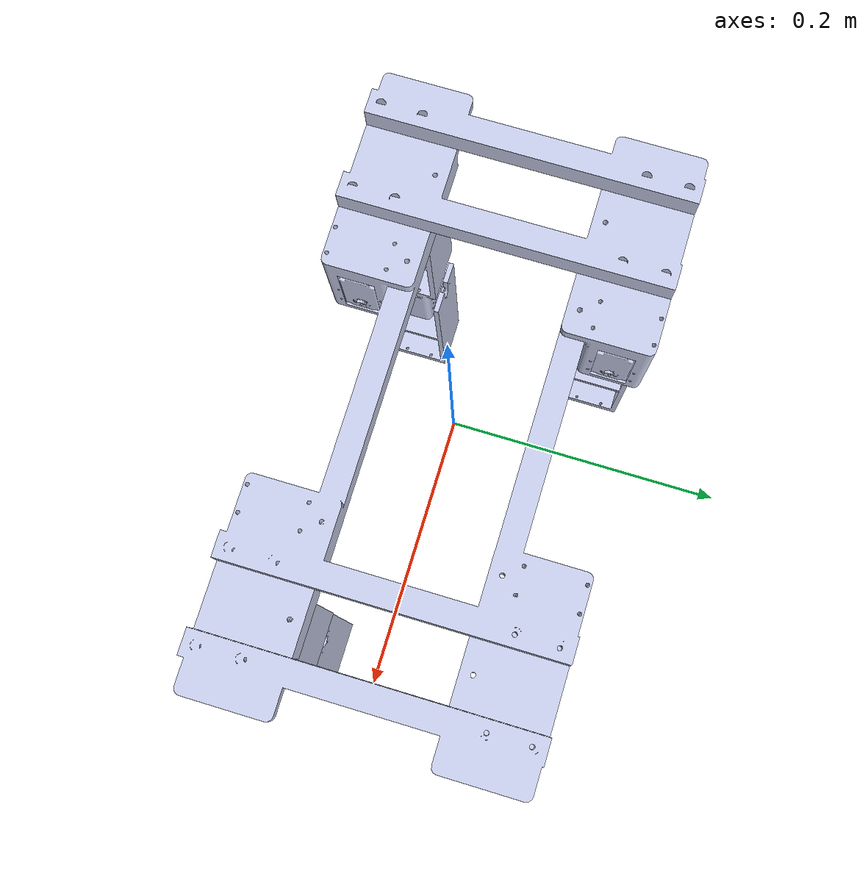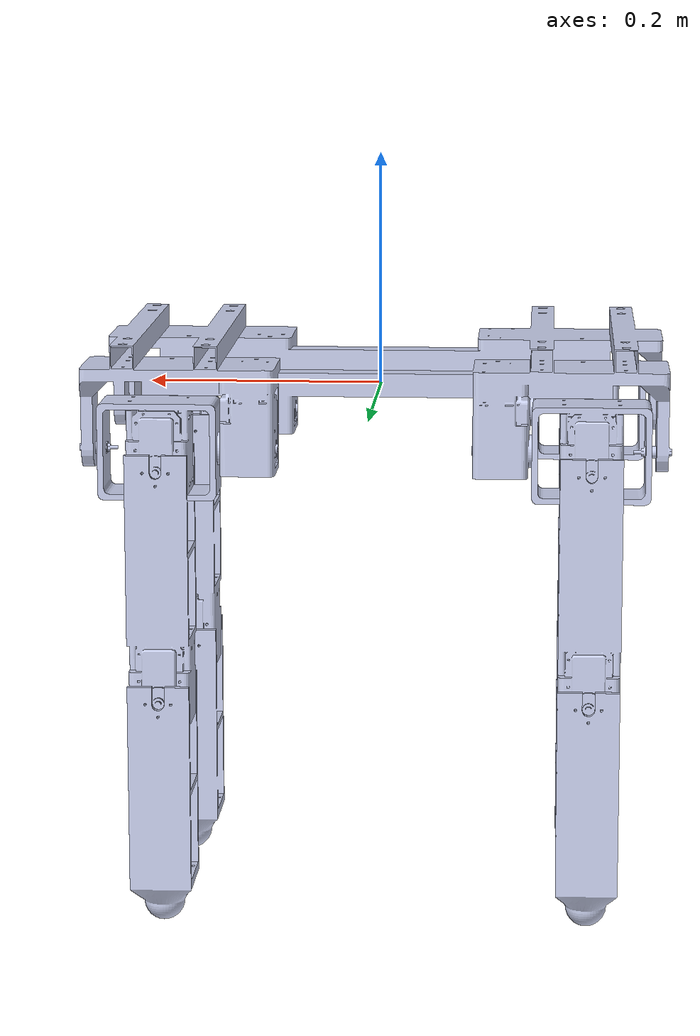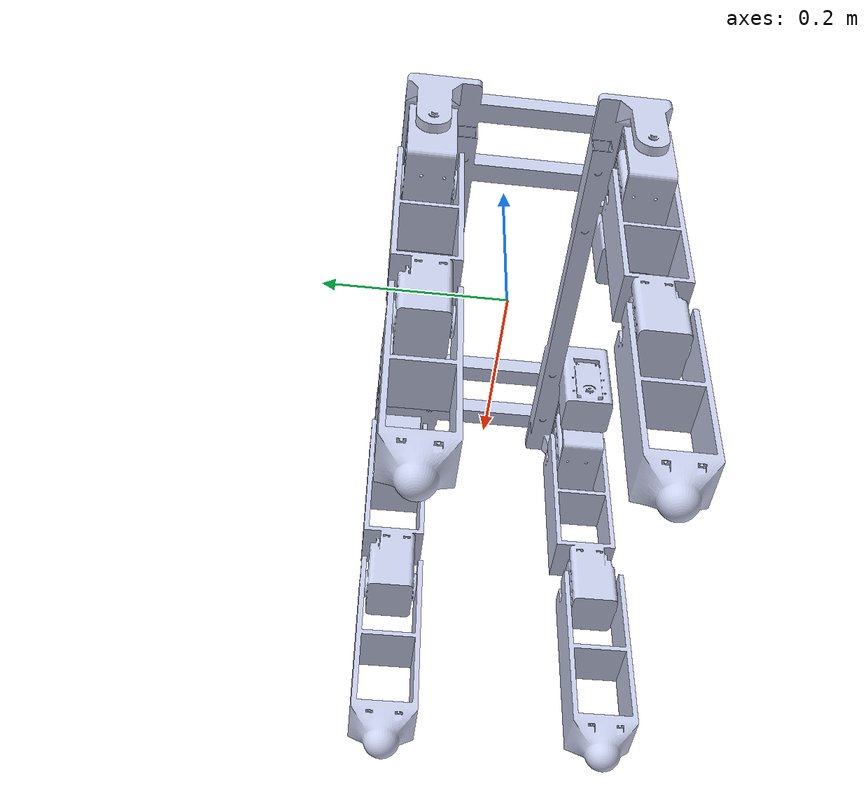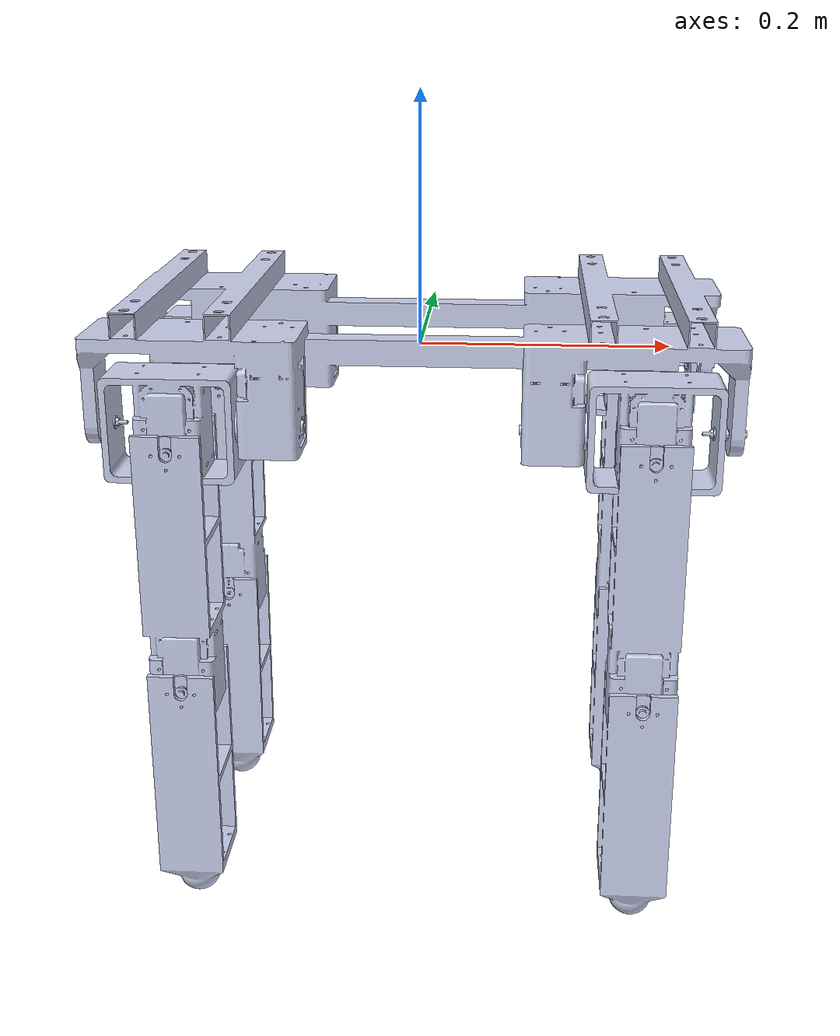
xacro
<?xml version="1.0" encoding="utf-8"?>
<robot
  name="animal" xmlns:xacro="http://ros.org/wiki/xacro">
  <xacro:property name="shoulder_mass" value="0.252"/>
  <xacro:property name="foot1_mass" value="0.27"/>
  <xacro:property name="foot2_mass" value="0.114"/>
  <xacro:property name="damping" value="0.1"/>
  <xacro:property name="friction" value="0.1"/>
  <link
    name="base_link">
    <inertial>
      <origin
        xyz="-4.65605245534295E-05 -7.4500246250192E-05 0.000331072187696624"
        rpy="0 0 0" />
      <mass
        value="1.37310264677598" />
      <inertia
        ixx="0.0145526003142759"
        ixy="-7.08204921615661E-06"
        ixz="-1.76027148954693E-06"
        iyy="0.0327705707270821"
        iyz="-2.6435932061285E-06"
        izz="0.0450016716255181" />
    </inertial>
    <visual>
      <origin
        xyz="0 0 0"
        rpy="0 0 0" />
      <geometry>
        <mesh
          filename="package://animal/meshes/base_link.STL" />
      </geometry>
      <material
        name="">
        <color
          rgba="0.792156862745098 0.819607843137255 0.933333333333333 1" />
      </material>
    </visual>
    <collision>
      <origin
        xyz="0 0 0"
        rpy="0 0 0" />
      <geometry>
        <mesh
          filename="package://animal/meshes/base_link.STL" />
      </geometry>
    </collision>
  </link>
  <link
    name="shoulder_link1">
    <inertial>
      <origin
        xyz="0.045394 0.00049346 -0.0024342"
        rpy="0 0 0" />
      <mass
        value="${shoulder_mass}" />
      <inertia
        ixx="0.00017199"
        ixy="1.3091E-08"
        ixz="-7.5157E-08"
        iyy="0.00027127"
        iyz="-2.4112E-06"
        izz="0.00017935" />
    </inertial>
    <visual>
      <origin
        xyz="0 0 0"
        rpy="0 0 0" />
      <geometry>
        <mesh
          filename="package://animal/meshes/shoulder_link1.STL" />
      </geometry>
      <material
        name="">
        <color
          rgba="0.79216 0.81961 0.93333 1" />
      </material>
    </visual>
    <collision>
      <origin
        xyz="0 0 0"
        rpy="0 0 0" />
      <geometry>
        <mesh
          filename="package://animal/meshes/shoulder_link1.STL" />
      </geometry>
    </collision>
  </link>
  <joint
    name="Shoulder_Joint1"
    type="revolute">
    <origin
      xyz="0.1364 -0.1039 -0.040602"
      rpy="0 0 0" />
    <parent
      link="base_link" />
    <child
      link="shoulder_link1" />
    <axis
      xyz="1 0 0" />
    <limit
      lower="-3.14"
      upper="3.14"
      effort="300"
      velocity="2" />
    <dynamics
      damping="0.1"
      friction="0.1" />
  </joint>
  <link
    name="foot_link1">
    <inertial>
      <origin
        xyz="-0.00010681 0.028167 -0.13855"
        rpy="0 0 0" />
      <mass
        value="${foot1_mass}" />
      <inertia
        ixx="0.0011428"
        ixy="-7.7816E-08"
        ixz="-1.2295E-06"
        iyy="0.0010922"
        iyz="-4.0822E-05"
        izz="0.00016177" />
    </inertial>
    <visual>
      <origin
        xyz="0 0 0"
        rpy="0 0 0" />
      <geometry>
        <mesh
          filename="package://animal/meshes/foot_link1.STL" />
      </geometry>
      <material
        name="">
        <color
          rgba="0.79216 0.81961 0.93333 1" />
      </material>
    </visual>
    <collision>
      <origin
        xyz="0 0 0"
        rpy="0 0 0" />
      <geometry>
        <mesh
          filename="package://animal/meshes/foot_link1.STL" />
      </geometry>
    </collision>
  </link>
  <joint
    name="foot_Joint1"
    type="revolute">
    <origin
      xyz="0.0455 -0.0303999999999997 -0.01655"
      rpy="0 0 0" />
    <parent
      link="shoulder_link1" />
    <child
      link="foot_link1" />
    <axis
      xyz="0 -1 0" />
    <limit
      lower="-3.14"
      upper="3.14"
      effort="300"
      velocity="2" />
    <dynamics
      damping="0.1"
      friction="0.1" />
  </joint>
  <link
    name="foot_link2">
    <inertial>
      <origin
        xyz="0 0.0313 -0.114"
        rpy="0 0 0" />
      <mass
        value="${foot2_mass}" />
      <inertia
        ixx="0.00071221"
        ixy="1.2821E-10"
        ixz="3.8415E-19"
        iyy="0.0006539"
        iyz="-3.0942E-21"
        izz="0.00013137" />
    </inertial>
    <visual>
      <origin
        xyz="0 0 0"
        rpy="0 0 0" />
      <geometry>
        <mesh
          filename="package://animal/meshes/foot_link2.STL" />
      </geometry>
      <material
        name="">
        <color
          rgba="0.79216 0.81961 0.93333 1" />
      </material>
    </visual>
    <collision>
      <origin
        xyz="0 0 0"
        rpy="0 0 0" />
      <geometry>
        <mesh
          filename="package://animal/meshes/foot_link2.STL" />
      </geometry>
    </collision>
  </link>
  <joint
    name="foot_Joint2"
    type="revolute">
    <origin
      xyz="-0.000300000000000189 -0.00559999999999965 -0.2"
      rpy="0 0 0" />
    <parent
      link="foot_link1" />
    <child
      link="foot_link2" />
    <axis
      xyz="0 -1 0" />
    <limit
      lower="-3.14"
      upper="3.14"
      effort="300"
      velocity="2" />
    <dynamics
      damping="0.1"
      friction="0.1" />
  </joint>
  <link
    name="shoulder_link2">
    <inertial>
      <origin
        xyz="-0.045396 0.00052276 -0.002428"
        rpy="0 0 0" />
      <mass
        value="${shoulder_mass}" />
      <inertia
        ixx="0.00017199"
        ixy="-9.6634E-09"
        ixz="7.2469E-08"
        iyy="0.00027131"
        iyz="-1.3026E-06"
        izz="0.00017931" />
    </inertial>
    <visual>
      <origin
        xyz="0 0 0"
        rpy="0 0 0" />
      <geometry>
        <mesh
          filename="package://animal/meshes/shoulder_link2.STL" />
      </geometry>
      <material
        name="">
        <color
          rgba="0.79216 0.81961 0.93333 1" />
      </material>
    </visual>
    <collision>
      <origin
        xyz="0 0 0"
        rpy="0 0 0" />
      <geometry>
        <mesh
          filename="package://animal/meshes/shoulder_link2.STL" />
      </geometry>
    </collision>
  </link>
  <joint
    name="Shoulder_Joint2"
    type="revolute">
    <origin
      xyz="-0.137195865149232 -0.103898400498668 -0.0406019523406848"
      rpy="0 0 0" />
    <parent
      link="base_link" />
    <child
      link="shoulder_link2" />
    <axis
      xyz="-1 0 0" />
    <limit
      lower="-3.14"
      upper="3.14"
      effort="300"
      velocity="2" />
    <dynamics
      damping="0.1"
      friction="0.1" />
  </joint>
  <link
    name="foot_link3">
    <inertial>
      <origin
        xyz="0.0001043 0.033605 -0.13852"
        rpy="0 0 0" />
      <mass
        value="${foot1_mass}" />
      <inertia
        ixx="0.0011408"
        ixy="-1.0588E-08"
        ixz="1.1974E-06"
        iyy="0.001092"
        iyz="1.4071E-05"
        izz="0.00016" />
    </inertial>
    <visual>
      <origin
        xyz="0 0 0"
        rpy="0 0 0" />
      <geometry>
        <mesh
          filename="package://animal/meshes/foot_link3.STL" />
      </geometry>
      <material
        name="">
        <color
          rgba="0.79216 0.81961 0.93333 1" />
      </material>
    </visual>
    <collision>
      <origin
        xyz="0 0 0"
        rpy="0 0 0" />
      <geometry>
        <mesh
          filename="package://animal/meshes/foot_link3.STL" />
      </geometry>
    </collision>
  </link>
  <joint
    name="foot_Joint3"
    type="revolute">
    <origin
      xyz="-0.0454974228331889 -0.0304000000000003 -0.0165499999999999"
      rpy="0 0 0" />
    <parent
      link="shoulder_link2" />
    <child
      link="foot_link3" />
    <axis
      xyz="0 -0.999927336084633 -0.0120549803272323" />
    <limit
      lower="-3.14"
      upper="3.14"
      effort="300"
      velocity="2" />
    <dynamics
      damping="0.1"
      friction="0.1" />
  </joint>
  <link
    name="foot_link4">
    <inertial>
      <origin
        xyz="2.9416E-11 0.032672 -0.11362"
        rpy="0 0 0" />
      <mass
        value="${foot2_mass}" />
      <inertia
        ixx="0.00071221"
        ixy="1.2927E-10"
        ixz="2.0517E-12"
        iyy="0.00065382"
        iyz="6.2986E-06"
        izz="0.00013145" />
    </inertial>
    <visual>
      <origin
        xyz="0 0 0"
        rpy="0 0 0" />
      <geometry>
        <mesh
          filename="package://animal/meshes/foot_link4.STL" />
      </geometry>
      <material
        name="">
        <color
          rgba="0.79216 0.81961 0.93333 1" />
      </material>
    </visual>
    <collision>
      <origin
        xyz="0 0 0"
        rpy="0 0 0" />
      <geometry>
        <mesh
          filename="package://animal/meshes/foot_link4.STL" />
      </geometry>
    </collision>
  </link>
  <joint
    name="foot_Joint4"
    type="revolute">
    <origin
      xyz="0.00030000000000005 0.00351264957536317 -0.200339886548781"
      rpy="0 0 0" />
    <parent
      link="foot_link3" />
    <child
      link="foot_link4" />
    <axis
      xyz="0 -0.999927336084633 -0.0120549803272322" />
    <limit
      lower="-3.14"
      upper="3.14"
      effort="300"
      velocity="2" />
    <dynamics
      damping="0.1"
      friction="0.1" />
  </joint>
  <link
    name="shoulder_link3">
    <inertial>
      <origin
        xyz="0.045396 -0.00049346 -0.0024342"
        rpy="0 0 0" />
      <mass
        value="${shoulder_mass}" />
      <inertia
        ixx="0.00017199"
        ixy="-8.7889E-09"
        ixz="-7.258E-08"
        iyy="0.00027127"
        iyz="2.4112E-06"
        izz="0.00017935" />
    </inertial>
    <visual>
      <origin
        xyz="0 0 0"
        rpy="0 0 0" />
      <geometry>
        <mesh
          filename="package://animal/meshes/shoulder_link3.STL" />
      </geometry>
      <material
        name="">
        <color
          rgba="0.79216 0.81961 0.93333 1" />
      </material>
    </visual>
    <collision>
      <origin
        xyz="0 0 0"
        rpy="0 0 0" />
      <geometry>
        <mesh
          filename="package://animal/meshes/shoulder_link3.STL" />
      </geometry>
    </collision>
  </link>
  <joint
    name="Shoulder_Joint3"
    type="revolute">
    <origin
      xyz="0.137204134850768 0.103301599501334 -0.0406019523406844"
      rpy="0 0 0" />
    <parent
      link="base_link" />
    <child
      link="shoulder_link3" />
    <axis
      xyz="1 0 0" />
    <limit
      lower="-3.14"
      upper="3.14"
      effort="300"
      velocity="2" />
    <dynamics
      damping="0.1"
      friction="0.1" />
  </joint>
  <link
    name="foot_link5">
    <inertial>
      <origin
        xyz="0.00010681 -0.031454 -0.13855"
        rpy="0 0 0" />
      <mass
        value="${foot1_mass}" />
      <inertia
        ixx="0.0011409"
        ixy="-1.3384E-08"
        ixz="1.2295E-06"
        iyy="0.0010922"
        iyz="4.0257E-07"
        izz="0.00015984" />
    </inertial>
    <visual>
      <origin
        xyz="0 0 0"
        rpy="0 0 0" />
      <geometry>
        <mesh
          filename="package://animal/meshes/foot_link5.STL" />
      </geometry>
      <material
        name="">
        <color
          rgba="0.79216 0.81961 0.93333 1" />
      </material>
    </visual>
    <collision>
      <origin
        xyz="0 0 0"
        rpy="0 0 0" />
      <geometry>
        <mesh
          filename="package://animal/meshes/foot_link5.STL" />
      </geometry>
    </collision>
  </link>
  <joint
    name="foot_Joint5"
    type="revolute">
    <origin
      xyz="0.0454974228331887 0.0304000000000004 -0.01655"
      rpy="0 0 0" />
    <parent
      link="shoulder_link3" />
    <child
      link="foot_link5" />
    <axis
      xyz="0 1 0" />
    <limit
      lower="-3.14"
      upper="3.14"
      effort="300"
      velocity="2" />
    <dynamics
      damping="0.1"
      friction="0.1" />
  </joint>
  <link
    name="foot_link6">
    <inertial>
      <origin
        xyz="0 -0.0313 -0.114"
        rpy="0 0 0" />
      <mass
        value="${foot2_mass}" />
      <inertia
        ixx="0.00071221"
        ixy="1.2821E-10"
        ixz="1.1095E-18"
        iyy="0.0006539"
        iyz="-7.7124E-19"
        izz="0.00013137" />
    </inertial>
    <visual>
      <origin
        xyz="0 0 0"
        rpy="0 0 0" />
      <geometry>
        <mesh
          filename="package://animal/meshes/foot_link6.STL" />
      </geometry>
      <material
        name="">
        <color
          rgba="0.79216 0.81961 0.93333 1" />
      </material>
    </visual>
    <collision>
      <origin
        xyz="0 0 0"
        rpy="0 0 0" />
      <geometry>
        <mesh
          filename="package://animal/meshes/foot_link6.STL" />
      </geometry>
    </collision>
  </link>
  <joint
    name="foot_Joint6"
    type="revolute">
    <origin
      xyz="0.000299999999999967 -9.9999999999989E-05 -0.2"
      rpy="0 0 0" />
    <parent
      link="foot_link5" />
    <child
      link="foot_link6" />
    <axis
      xyz="0 1 0" />
    <limit
      lower="-3.14"
      upper="3.14"
      effort="300"
      velocity="2" />
    <dynamics
      damping="0.1"
      friction="0.1" />
  </joint>
  <link
    name="shoulder_link4">
    <inertial>
      <origin
        xyz="-0.045394 -0.00049346 -0.0024342"
        rpy="0 0 0" />
      <mass
        value="${shoulder_mass}" />
      <inertia
        ixx="0.00017199"
        ixy="1.3091E-08"
        ixz="7.5157E-08"
        iyy="0.00027127"
        iyz="2.4112E-06"
        izz="0.00017935" />
    </inertial>
    <visual>
      <origin
        xyz="0 0 0"
        rpy="0 0 0" />
      <geometry>
        <mesh
          filename="package://animal/meshes/shoulder_link4.STL" />
      </geometry>
      <material
        name="">
        <color
          rgba="0.79216 0.81961 0.93333 1" />
      </material>
    </visual>
    <collision>
      <origin
        xyz="0 0 0"
        rpy="0 0 0" />
      <geometry>
        <mesh
          filename="package://animal/meshes/shoulder_link4.STL" />
      </geometry>
    </collision>
  </link>
  <joint
    name="Shoulder_Joint4"
    type="revolute">
    <origin
      xyz="-0.1372 0.1033 -0.040602"
      rpy="0 0 0" />
    <parent
      link="base_link" />
    <child
      link="shoulder_link4" />
    <axis
      xyz="-1 0 0" />
    <limit
      lower="-3.14"
      upper="3.14"
      effort="300"
      velocity="2" />
    <dynamics
      damping="0.1"
      friction="0.1" />
  </joint>
  <link
    name="foot_link7">
    <inertial>
      <origin
        xyz="0.00010681 -0.031454 -0.13855"
        rpy="0 0 0" />
      <mass
        value="${foot1_mass}" />
      <inertia
        ixx="0.0011409"
        ixy="-1.3384E-08"
        ixz="1.2295E-06"
        iyy="0.0010922"
        iyz="4.0257E-07"
        izz="0.00015984" />
    </inertial>
    <visual>
      <origin
        xyz="0 0 0"
        rpy="0 0 0" />
      <geometry>
        <mesh
          filename="package://animal/meshes/foot_link7.STL" />
      </geometry>
      <material
        name="">
        <color
          rgba="0.79216 0.81961 0.93333 1" />
      </material>
    </visual>
    <collision>
      <origin
        xyz="0 0 0"
        rpy="0 0 0" />
      <geometry>
        <mesh
          filename="package://animal/meshes/foot_link7.STL" />
      </geometry>
    </collision>
  </link>
  <joint
    name="foot_Joint7"
    type="revolute">
    <origin
      xyz="-0.0455000000000004 0.0303999999999995 -0.01655"
      rpy="0 0 0" />
    <parent
      link="shoulder_link4" />
    <child
      link="foot_link7" />
    <axis
      xyz="0 1 0" />
    <limit
      lower="-3.14"
      upper="3.14"
      effort="300"
      velocity="2" />
    <dynamics
      damping="0.1"
      friction="0.1" />
  </joint>
  <link
    name="foot_link8">
    <inertial>
      <origin
        xyz="-6.9111E-15 -0.0313 -0.114"
        rpy="0 0 0" />
      <mass
        value="${foot2_mass}" />
      <inertia
        ixx="0.00071221"
        ixy="1.2821E-10"
        ixz="8.3659E-17"
        iyy="0.0006539"
        iyz="7.8529E-18"
        izz="0.00013137" />
    </inertial>
    <visual>
      <origin
        xyz="0 0 0"
        rpy="0 0 0" />
      <geometry>
        <mesh
          filename="package://animal/meshes/foot_link8.STL" />
      </geometry>
      <material
        name="">
        <color
          rgba="0.79216 0.81961 0.93333 1" />
      </material>
    </visual>
    <collision>
      <origin
        xyz="0 0 0"
        rpy="0 0 0" />
      <geometry>
        <mesh
          filename="package://animal/meshes/foot_link8.STL" />
      </geometry>
    </collision>
  </link>
  <joint
    name="foot_Joint8"
    type="revolute">
    <origin
      xyz="0.000299999999999967 -0.0001000000000001 -0.2"
      rpy="0 0 0" />
    <parent
      link="foot_link7" />
    <child
      link="foot_link8" />
    <axis
      xyz="0 1 0" />
    <limit
      lower="-3.14"
      upper="3.14"
      effort="300"
      velocity="2" />
    <dynamics
      damping="0.1"
      friction="0.1" />
  </joint>
  <!-- /////////////////////////////////   Gazebo   ////////////////////////////////////// -->

    <!-- Transmissions for ROS Control -->
    <xacro:macro name="transmission_block" params="joint_name">
        <transmission name="tran1">
            <type>transmission_interface/SimpleTransmission</type>
            <joint name="${joint_name}">
                <hardwareInterface>hardware_interface/EffortJointInterface</hardwareInterface>
            </joint>
            <actuator name="motor1">
                <hardwareInterface>hardware_interface/EffortJointInterface</hardwareInterface>
                <mechanicalReduction>1</mechanicalReduction>
            </actuator>
        </transmission>
    </xacro:macro>

    <xacro:transmission_block joint_name="Shoulder_Joint1"/>
    <xacro:transmission_block joint_name="Shoulder_Joint2"/>
    <xacro:transmission_block joint_name="Shoulder_Joint3"/>
    <xacro:transmission_block joint_name="Shoulder_Joint4"/>
    <xacro:transmission_block joint_name="foot_Joint1"/>
    <xacro:transmission_block joint_name="foot_Joint2"/>
    <xacro:transmission_block joint_name="foot_Joint3"/>
    <xacro:transmission_block joint_name="foot_Joint4"/>
    <xacro:transmission_block joint_name="foot_Joint5"/>
    <xacro:transmission_block joint_name="foot_Joint6"/>
    <xacro:transmission_block joint_name="foot_Joint7"/>
    <xacro:transmission_block joint_name="foot_Joint8"/>

  <gazebo reference="base_link">
    <gravity>true</gravity>
    <sensor name="imu_sensor" type="imu">
      <always_on>true</always_on>
      <update_rate>100</update_rate>
      <visualize>true</visualize>
      <topic>__default_topic__</topic>
      <plugin filename="libgazebo_ros_imu_sensor.so" name="imu_plugin">
        <topicName>imu</topicName>
        <bodyName>base _link</bodyName>
        <updateRateHZ>100.0</updateRateHZ>
        <gaussianNoise>0.0</gaussianNoise>
        <xyzOffset>0 0 0</xyzOffset>
        <rpyOffset>0 0 0</rpyOffset>
        <frameName>imu_link</frameName>
      </plugin>
      <pose>0 0 0 0 0 0</pose>
    </sensor>
  </gazebo>
  <xacro:macro name="link_setup_block" params="link_name">
    <gazebo reference="${link_name}">
      <kp>1000000.0</kp>
      <kd>1.0</kd>
      <mu1>0.6</mu1>
      <mu2>0.6</mu2>
      <minDepth>0.001</minDepth>
    </gazebo>
  </xacro:macro>
  <xacro:link_setup_block link_name="foot_link2"/>
  <xacro:link_setup_block link_name="foot_link4"/>
  <xacro:link_setup_block link_name="foot_link6"/>
  <xacro:link_setup_block link_name="foot_link8"/>

    <gazebo>
        <plugin name="gazebo_ros_control" filename="libgazebo_ros_control.so">
            <robotNamespace>/animal</robotNamespace>
            <robotSimType>gazebo_ros_control/DefaultRobotHWSim</robotSimType>
            <legacyModeNS>true</legacyModeNS>
        </plugin>
    </gazebo>
</robot>
